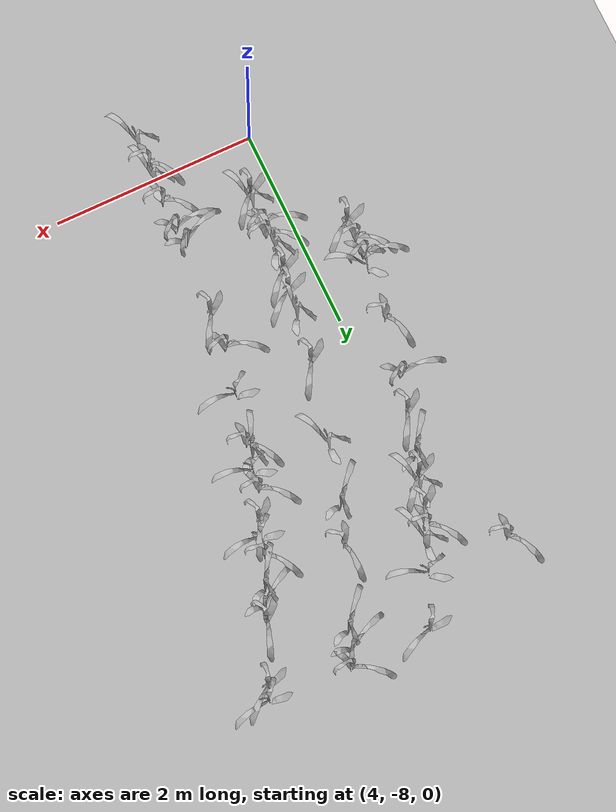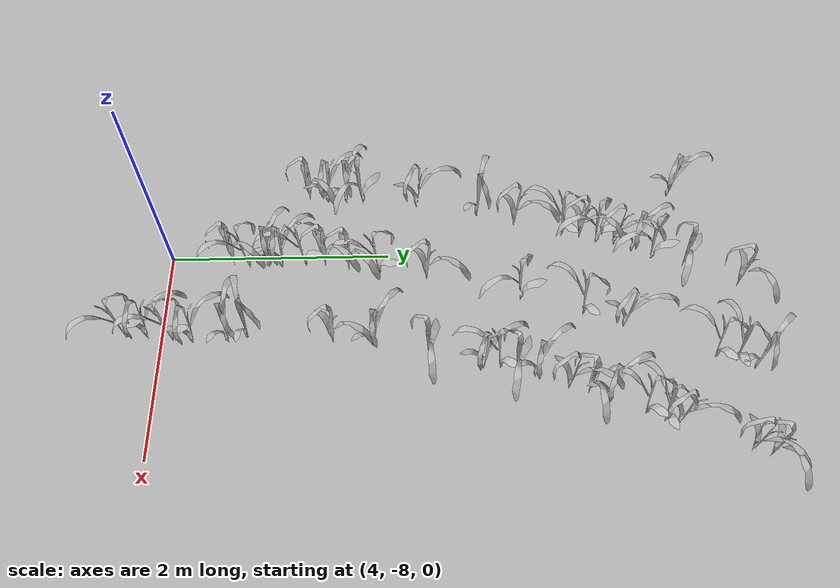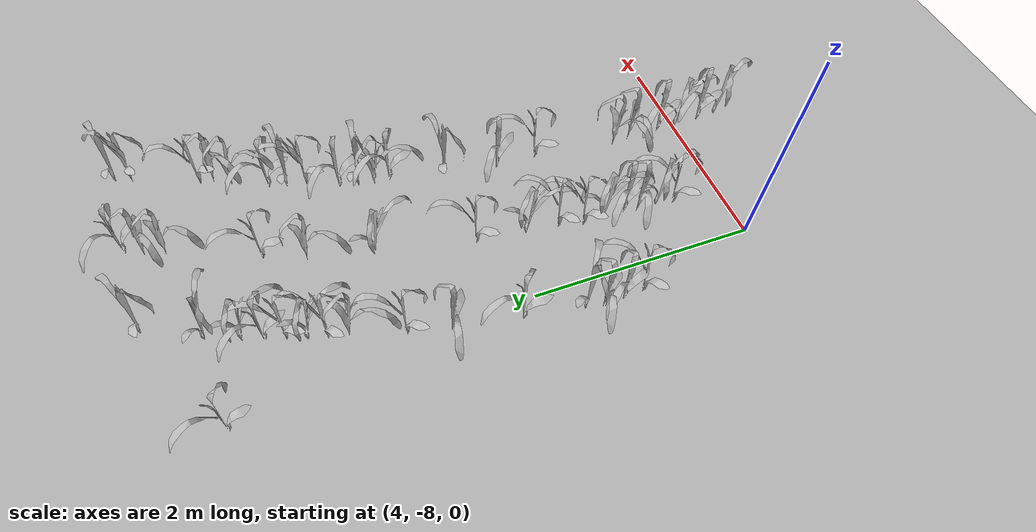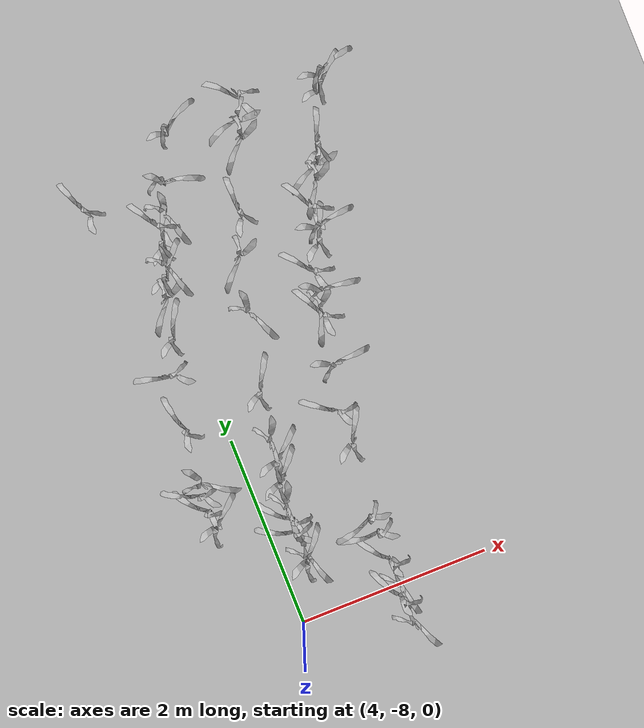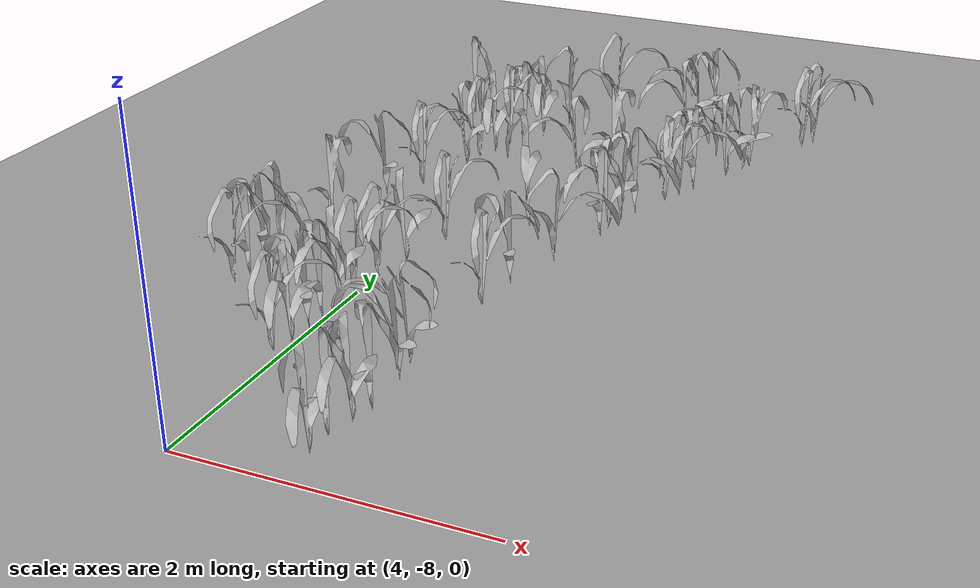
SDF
<sdf version="1.6">
 <world name="default">
  <include>
   <uri>model://my_ground_plane</uri>
   <pose>5 -7 0.03 0 0 0</pose>
   <name>ground_13</name>
   <static>true</static>
  </include>
  <include>
   <uri>model://my_ground_plane</uri>
   <pose>10 -7 0.03 0 0 0</pose>
   <name>ground_14</name>
   <static>true</static>
  </include>
  <include>
   <uri>model://maize_01</uri>
   <pose>3.5621402877068955 -3.3896487965075357 0.26432436890831945 0.0 0.0 2.7600104230581306</pose>
   <name>maize_01_0207</name>
   <static>false</static>
  </include>
  <include>
   <uri>model://maize_01</uri>
   <pose>3.591904083773405 -6.709408949322482 0.31900849615925764 0.0 0.0 1.529848949214227</pose>
   <name>maize_01_0298</name>
   <static>false</static>
  </include>
  <include>
   <uri>model://maize_01</uri>
   <pose>3.5866035476256184 -6.540140606081028 0.28593046067834865 0.0 0.0 3.035005671456142</pose>
   <name>maize_01_0299</name>
   <static>false</static>
  </include>
  <include>
   <uri>model://maize_01</uri>
   <pose>3.5868509817240812 -6.368701407904789 0.28136537504243286 0.0 0.0 3.4678702887491735</pose>
   <name>maize_01_0300</name>
   <static>false</static>
  </include>
  <include>
   <uri>model://maize_01</uri>
   <pose>3.603966628455973 -6.227378905041855 0.2985170442017973 0.0 0.0 0.23992099648941648</pose>
   <name>maize_01_0301</name>
   <static>false</static>
  </include>
  <include>
   <uri>model://maize_01</uri>
   <pose>3.6777780744907997 -5.7257069962639155 0.3152723102329323 0.0 0.0 2.5890024320897314</pose>
   <name>maize_01_0304</name>
   <static>false</static>
  </include>
  <include>
   <uri>model://maize_01</uri>
   <pose>3.774609390290528 -5.175374484100064 0.2989340322535398 0.0 0.0 3.69670981242073</pose>
   <name>maize_01_0307</name>
   <static>false</static>
  </include>
  <include>
   <uri>model://maize_01</uri>
   <pose>3.8763156500353797 -4.8438412226552225 0.2726443107017327 0.0 0.0 1.868833506353338</pose>
   <name>maize_01_0309</name>
   <static>false</static>
  </include>
  <include>
   <uri>model://maize_01</uri>
   <pose>3.998624313086717 -4.421415222276697 0.2888432903073856 0.0 0.0 4.891121478177763</pose>
   <name>maize_01_0312</name>
   <static>false</static>
  </include>
  <include>
   <uri>model://maize_01</uri>
   <pose>4.035214364935504 -4.2629048349720255 0.28876414997344296 0.0 0.0 1.6738021616328786</pose>
   <name>maize_01_0313</name>
   <static>false</static>
  </include>
  <include>
   <uri>model://maize_01</uri>
   <pose>4.08183380354591 -4.118120886953725 0.2784598666874348 0.0 0.0 5.823679705993197</pose>
   <name>maize_01_0314</name>
   <static>false</static>
  </include>
  <include>
   <uri>model://maize_01</uri>
   <pose>4.131503623317942 -3.9598844572803804 0.2902201712957769 0.0 0.0 1.9527561113190317</pose>
   <name>maize_01_0315</name>
   <static>false</static>
  </include>
  <include>
   <uri>model://maize_01</uri>
   <pose>4.184040660341465 -3.798569745687753 0.27278773337689216 0.0 0.0 2.942854081703612</pose>
   <name>maize_01_0316</name>
   <static>false</static>
  </include>
  <include>
   <uri>model://maize_01</uri>
   <pose>4.251965576777485 -3.637281955933661 0.26226584345294746 0.0 0.0 5.8154678174693375</pose>
   <name>maize_01_0317</name>
   <static>false</static>
  </include>
  <include>
   <uri>model://maize_01</uri>
   <pose>4.352734333641511 -3.370718953679888 0.27061833276481434 0.0 0.0 0.4948426230184835</pose>
   <name>maize_01_0319</name>
   <static>false</static>
  </include>
  <include>
   <uri>model://maize_01</uri>
   <pose>4.5653471407190604 -2.919408102616109 0.2735538883097568 0.0 0.0 1.245222247646658</pose>
   <name>maize_01_0322</name>
   <static>false</static>
  </include>
  <include>
   <uri>model://maize_01</uri>
   <pose>4.283817634850244 -7.349605808930974 0.3304877769297632 0.0 0.0 1.7031654688701463</pose>
   <name>maize_01_0413</name>
   <static>false</static>
  </include>
  <include>
   <uri>model://maize_01</uri>
   <pose>4.311864441616656 -7.214718478539224 0.3208505285453523 0.0 0.0 5.839564679428177</pose>
   <name>maize_01_0414</name>
   <static>false</static>
  </include>
  <include>
   <uri>model://maize_01</uri>
   <pose>4.314658093108481 -7.03057253009798 0.3204094602171106 0.0 0.0 3.4804609074906243</pose>
   <name>maize_01_0415</name>
   <static>false</static>
  </include>
  <include>
   <uri>model://maize_01</uri>
   <pose>4.332461192347102 -6.914432952171811 0.33663721275003944 0.0 0.0 3.128349241191585</pose>
   <name>maize_01_0416</name>
   <static>false</static>
  </include>
  <include>
   <uri>model://maize_01</uri>
   <pose>4.317875877771753 -6.714715734093384 0.33765215717774 0.0 0.0 5.496755913869377</pose>
   <name>maize_01_0417</name>
   <static>false</static>
  </include>
  <include>
   <uri>model://maize_01</uri>
   <pose>4.328250982936341 -6.540410933120068 0.3296241265095578 0.0 0.0 1.676651830020918</pose>
   <name>maize_01_0418</name>
   <static>false</static>
  </include>
  <include>
   <uri>model://maize_01</uri>
   <pose>4.372503362572067 -6.33295512472918 0.3374696377483843 0.0 0.0 1.541669849892502</pose>
   <name>maize_01_0419</name>
   <static>false</static>
  </include>
  <include>
   <uri>model://maize_01</uri>
   <pose>4.408511960687369 -6.0655401014464 0.3255548906657883 0.0 0.0 5.474531217734671</pose>
   <name>maize_01_0421</name>
   <static>false</static>
  </include>
  <include>
   <uri>model://maize_01</uri>
   <pose>4.472054566355515 -5.648164716848422 0.30196875499711634 0.0 0.0 1.8481896790425716</pose>
   <name>maize_01_0424</name>
   <static>false</static>
  </include>
  <include>
   <uri>model://maize_01</uri>
   <pose>4.661969026591255 -4.834997311032274 0.27314516939663963 0.0 0.0 5.934514265994815</pose>
   <name>maize_01_0429</name>
   <static>false</static>
  </include>
  <include>
   <uri>model://maize_01</uri>
   <pose>4.813857638082721 -4.298583210739444 0.25451888740475126 0.0 0.0 4.777513785986487</pose>
   <name>maize_01_0432</name>
   <static>false</static>
  </include>
  <include>
   <uri>model://maize_01</uri>
   <pose>4.947605613663432 -3.960171739373256 0.2519570820873442 0.0 0.0 2.3764352510440294</pose>
   <name>maize_01_0434</name>
   <static>false</static>
  </include>
  <include>
   <uri>model://maize_01</uri>
   <pose>5.249764426020814 -3.2191442228003426 0.2441396135495847 0.0 0.0 4.801494957654374</pose>
   <name>maize_01_0439</name>
   <static>false</static>
  </include>
  <include>
   <uri>model://maize_01</uri>
   <pose>5.299238407985191 -3.0504572145413356 0.25651951686632474 0.0 0.0 4.307480066812063</pose>
   <name>maize_01_0440</name>
   <static>false</static>
  </include>
  <include>
   <uri>model://maize_01</uri>
   <pose>5.375438433166593 -2.9007018069810524 0.2544715768719947 0.0 0.0 3.2088142117766463</pose>
   <name>maize_01_0441</name>
   <static>false</static>
  </include>
  <include>
   <uri>model://maize_01</uri>
   <pose>5.034295137164051 -8.182332898044265 0.3592359377008658 0.0 0.0 5.936211877608783</pose>
   <name>maize_01_0544</name>
   <static>false</static>
  </include>
  <include>
   <uri>model://maize_01</uri>
   <pose>5.037167448059236 -7.999909027183181 0.35229593721288455 0.0 0.0 2.8604296930926627</pose>
   <name>maize_01_0545</name>
   <static>false</static>
  </include>
  <include>
   <uri>model://maize_01</uri>
   <pose>5.048892389510442 -7.800499807419671 0.32402175546796436 0.0 0.0 5.717239631872435</pose>
   <name>maize_01_0546</name>
   <static>false</static>
  </include>
  <include>
   <uri>model://maize_01</uri>
   <pose>5.067790673341909 -7.626068733424875 0.30564325429234285 0.0 0.0 3.0144188073156752</pose>
   <name>maize_01_0547</name>
   <static>false</static>
  </include>
  <include>
   <uri>model://maize_01</uri>
   <pose>5.063218692764128 -7.327618960733508 0.31995909728967753 0.0 0.0 3.7734219411019754</pose>
   <name>maize_01_0549</name>
   <static>false</static>
  </include>
  <include>
   <uri>model://maize_01</uri>
   <pose>5.035333566608282 -7.163358237322473 0.3255491882325803 0.0 0.0 4.177178698939992</pose>
   <name>maize_01_0550</name>
   <static>false</static>
  </include>
  <include>
   <uri>model://maize_01</uri>
   <pose>5.1209323065030325 -6.441179072764683 0.3503953119406371 0.0 0.0 1.8897387398317718</pose>
   <name>maize_01_0554</name>
   <static>false</static>
  </include>
  <include>
   <uri>model://maize_01</uri>
   <pose>5.1396900977945155 -6.093458056837533 0.3228552705642509 0.0 0.0 3.306064774509303</pose>
   <name>maize_01_0556</name>
   <static>false</static>
  </include>
  <include>
   <uri>model://maize_01</uri>
   <pose>5.223774812288131 -5.642922022130345 0.29426890327863087 0.0 0.0 0.8690754205873922</pose>
   <name>maize_01_0559</name>
   <static>false</static>
  </include>
  <include>
   <uri>model://maize_01</uri>
   <pose>5.351370788927634 -5.1847194040603455 0.30005403969636946 0.0 0.0 2.86494749187749</pose>
   <name>maize_01_0562</name>
   <static>false</static>
  </include>
  <include>
   <uri>model://maize_01</uri>
   <pose>5.346574785633885 -5.051075584042673 0.2980153475712815 0.0 0.0 5.14970923849031</pose>
   <name>maize_01_0563</name>
   <static>false</static>
  </include>
  <include>
   <uri>model://maize_01</uri>
   <pose>5.386548054357599 -4.9178089776101706 0.2934925951294154 0.0 0.0 0.6584273939157097</pose>
   <name>maize_01_0564</name>
   <static>false</static>
  </include>
  <include>
   <uri>model://maize_01</uri>
   <pose>5.427063514244377 -4.755152852919593 0.2845413700657499 0.0 0.0 3.0797129465319344</pose>
   <name>maize_01_0565</name>
   <static>false</static>
  </include>
  <include>
   <uri>model://maize_01</uri>
   <pose>5.548022455051722 -4.492140744726241 0.2919781226621748 0.0 0.0 1.9403433669911496</pose>
   <name>maize_01_0567</name>
   <static>false</static>
  </include>
  <include>
   <uri>model://maize_01</uri>
   <pose>5.58896375287005 -4.334408347457 0.27585055228510397 0.0 0.0 0.9234842572921539</pose>
   <name>maize_01_0568</name>
   <static>false</static>
  </include>
  <include>
   <uri>model://maize_01</uri>
   <pose>5.641428424237466 -4.180777950799214 0.273576324720698 0.0 0.0 2.8817978053174587</pose>
   <name>maize_01_0569</name>
   <static>false</static>
  </include>
  <include>
   <uri>model://maize_01</uri>
   <pose>5.771987464191513 -3.883338455945937 0.27565659796325676 0.0 0.0 4.950891294373072</pose>
   <name>maize_01_0571</name>
   <static>false</static>
  </include>
  <include>
   <uri>model://maize_01</uri>
   <pose>5.850003982487335 -3.740516727390177 0.28090424649282114 0.0 0.0 4.4576464940108895</pose>
   <name>maize_01_0572</name>
   <static>false</static>
  </include>
  <include>
   <uri>model://maize_01</uri>
   <pose>5.878293917494261 -3.6286931247378007 0.27449613357482416 0.0 0.0 2.0223314064025186</pose>
   <name>maize_01_0573</name>
   <static>false</static>
  </include>
  <include>
   <uri>model://maize_01</uri>
   <pose>6.1162135856185404 -3.07546844033622 0.2599746369409111 0.0 0.0 1.5284322958036414</pose>
   <name>maize_01_0577</name>
   <static>false</static>
  </include>
  <include>
   <uri>model://maize_01</uri>
   <pose>6.163064059313163 -2.939975754435424 0.25363534146004585 0.0 0.0 1.0515790550617432</pose>
   <name>maize_01_0578</name>
   <static>false</static>
  </include>
 </world>
</sdf>
